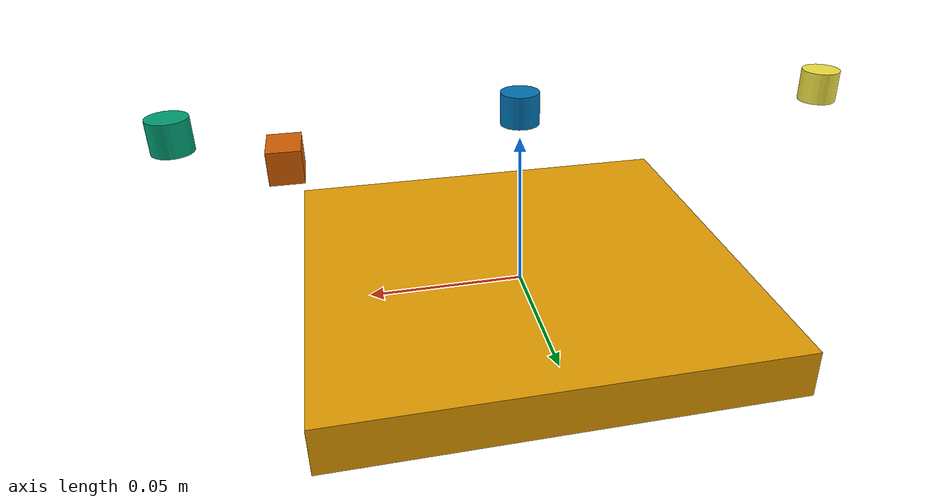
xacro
<?xml version="1.0"?>
<robot name="multi_laser" xmlns:xacro="http://ros.org/wiki/xacro">
    <link name="base_link">
        <visual>
            <geometry>
                <box size="0.14 0.14 0.015"/>
            </geometry>
        </visual>
    </link>

    <link name="base_footprint"/>

    <joint name="base_joint" type="fixed">
        <parent link="base_link"/>
        <child link="base_footprint"/>
        <origin xyz="0 0 -0.09" rpy="0 0 0"/>
    </joint>

    <link name="lidar_link1">
        <visual>
            <geometry>
                <cylinder radius="0.006" length="0.01"/>
            </geometry>
        </visual>
    </link>

    <joint name="lidar_joint1" type="fixed">
        <parent link="base_link"/>
        <child link="lidar_link1"/>
        <origin xyz="0.1 0 0.06" rpy="0 0 0"/>
    </joint>

    <link name="lidar_link2">
        <visual>
            <geometry>
                <cylinder radius="0.006" length="0.01"/>
            </geometry>
        </visual>
    </link>

    <joint name="lidar_joint2" type="fixed">
        <parent link="base_link"/>
        <child link="lidar_link2"/>
        <origin xyz="-0.1 0 0.06" rpy="0 0 3.14159"/>
    </joint>

    <link name="base_joint_scan">
        <visual>
            <geometry>
                <cylinder radius="0.006" length="0.01"/>
            </geometry>
        </visual>
    </link>

    <joint name="joint_scan_joint" type="fixed">
        <parent link="base_link"/>
        <child link="base_joint_scan"/>
        <origin xyz="0 0 0.06" rpy="0 0 0"/>
    </joint>

    <link name="camera_link">
        <visual>
            <geometry>
                <box size="0.01 0.015 0.01"/>
            </geometry>
        </visual>
    </link>

    <link name="camera_depth_frame"/>

    <joint name="camera_depth_joint" type="fixed">
		<origin xyz="0 0 0" rpy="-${pi/2} 0 -${pi/2}"/>
        <parent link="camera_link"/>
        <child link="camera_depth_frame"/>
    </joint>

    <joint name="camera_joint" type="fixed">
        <parent link="base_link"/>
        <child link="camera_link"/>
        <origin xyz="0.07 0 0.05" rpy="0 0 0"/>
    </joint>
</robot>
